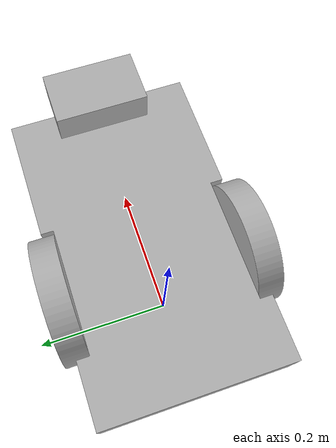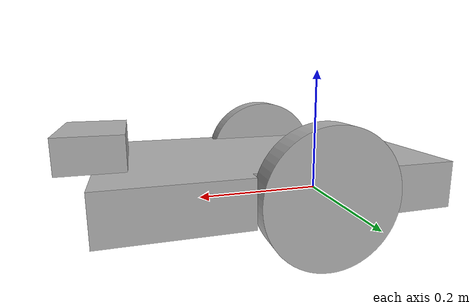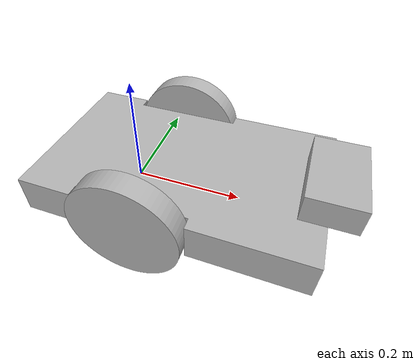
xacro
<?xml version="1.0" ?>
<robot name="twbot" xmlns:xacro="http://www.ros.org/wiki/xacro">

<xacro:include filename="$(find twbot_description)/urdf/materials.xacro" />
<xacro:include filename="$(find twbot_description)/urdf/twbot.trans" />
<xacro:include filename="$(find twbot_description)/urdf/twbot.gazebo" />
<link name="base_link">
  <inertial>
    <origin rpy="0 0 0" xyz="0.1028169014084507 0.0 0.035"/>
    <mass value="78.029"/>
    <inertia ixx="0.563741" ixy="0.0" ixz="0.0" iyy="1.722787" iyz="0.0" izz="2.222804"/>
  </inertial>
  <visual>
    <origin rpy="0 0 0" xyz="0 0 0"/>
    <geometry>
      <mesh filename="package://twbot_description/meshes/base_link.stl" scale="0.001 0.001 0.001"/>
    </geometry>
    <material name="silver"/>
  </visual>
  <collision>
    <origin rpy="0 0 0" xyz="0 0 0"/>
    <geometry>
      <mesh filename="package://twbot_description/meshes/base_link.stl" scale="0.001 0.001 0.001"/>
    </geometry>
  </collision>
</link>

<link name="left_wheel_1">
  <inertial>
    <origin rpy="0 0 0" xyz="-1.3877787807814457e-17 0.01999999999999999 -2.7755575615628914e-17"/>
    <mass value="9.86460093227195"/>
    <inertia ixx="0.025977" ixy="0.0" ixz="-0.0" iyy="0.049323" iyz="0.0" izz="0.025977"/>
  </inertial>
  <visual>
    <origin rpy="0 0 0" xyz="-0.05 -0.13 -0.035"/>
    <geometry>
      <mesh filename="package://twbot_description/meshes/left_wheel_1.stl" scale="0.001 0.001 0.001"/>
    </geometry>
    <material name="silver"/>
  </visual>
  <collision>
    <origin rpy="0 0 0" xyz="-0.05 -0.13 -0.035"/>
    <geometry>
      <mesh filename="package://twbot_description/meshes/left_wheel_1.stl" scale="0.001 0.001 0.001"/>
    </geometry>
  </collision>
</link>

<link name="right_wheel_1">
  <inertial>
    <origin rpy="0 0 0" xyz="-2.7755575615628914e-17 -0.020000000000000018 -2.7755575615628914e-17"/>
    <mass value="9.86460093227195"/>
    <inertia ixx="0.025977" ixy="-0.0" ixz="-0.0" iyy="0.049323" iyz="-0.0" izz="0.025977"/>
  </inertial>
  <visual>
    <origin rpy="0 0 0" xyz="-0.05 0.13 -0.035"/>
    <geometry>
      <mesh filename="package://twbot_description/meshes/right_wheel_1.stl" scale="0.001 0.001 0.001"/>
    </geometry>
    <material name="silver"/>
  </visual>
  <collision>
    <origin rpy="0 0 0" xyz="-0.05 0.13 -0.035"/>
    <geometry>
      <mesh filename="package://twbot_description/meshes/right_wheel_1.stl" scale="0.001 0.001 0.001"/>
    </geometry>
  </collision>
</link>

<link name="laser_link_1">
  <inertial>
    <origin rpy="0 0 0" xyz="0.04999999999999999 0.0 0.024999999999999994"/>
    <mass value="5.298749999999999"/>
    <inertia ixx="0.011039" ixy="0.0" ixz="-0.0" iyy="0.004681" iyz="-0.0" izz="0.013512"/>
  </inertial>
  <visual>
    <origin rpy="0 0 0" xyz="-0.3 0.0 -0.07"/>
    <geometry>
      <mesh filename="package://twbot_description/meshes/laser_link_1.stl" scale="0.001 0.001 0.001"/>
    </geometry>
    <material name="silver"/>
  </visual>
  <collision>
    <origin rpy="0 0 0" xyz="-0.3 0.0 -0.07"/>
    <geometry>
      <mesh filename="package://twbot_description/meshes/laser_link_1.stl" scale="0.001 0.001 0.001"/>
    </geometry>
  </collision>
</link>

<link name="caster_wheel_1">
  <inertial>
    <origin rpy="0 0 0" xyz="0.024999999999999967 0.0 -5.537041901091708e-18"/>
    <mass value="4.110250388446645"/>
    <inertia ixx="0.00411" ixy="0.0" ixz="-0.0" iyy="0.00411" iyz="-0.0" izz="0.00411"/>
  </inertial>
  <visual>
    <origin rpy="0 0 0" xyz="-0.25 -0.0 0.0"/>
    <geometry>
      <mesh filename="package://twbot_description/meshes/caster_wheel_1.stl" scale="0.001 0.001 0.001"/>
    </geometry>
    <material name="silver"/>
  </visual>
  <collision>
    <origin rpy="0 0 0" xyz="-0.25 -0.0 0.0"/>
    <geometry>
      <mesh filename="package://twbot_description/meshes/caster_wheel_1.stl" scale="0.001 0.001 0.001"/>
    </geometry>
  </collision>
</link>

<joint name="Rev1" type="continuous">
  <origin rpy="0 0 0" xyz="0.05 0.13 0.035"/>
  <parent link="base_link"/>
  <child link="left_wheel_1"/>
  <axis xyz="0.0 1.0 0.0"/>
</joint>

<joint name="Rev2" type="continuous">
  <origin rpy="0 0 0" xyz="0.05 -0.13 0.035"/>
  <parent link="base_link"/>
  <child link="right_wheel_1"/>
  <axis xyz="0.0 -1.0 0.0"/>
</joint>

<joint name="Rigid3" type="fixed">
  <origin rpy="0 0 0" xyz="0.3 0.0 0.07"/>
  <parent link="base_link"/>
  <child link="laser_link_1"/>
</joint>

<joint name="Rigid4" type="fixed">
  <origin rpy="0 0 0" xyz="0.25 0.0 0.0"/>
  <parent link="base_link"/>
  <child link="caster_wheel_1"/>
</joint>

</robot>

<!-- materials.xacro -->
<robot name="twbot" xmlns:xacro="http://www.ros.org/wiki/xacro" >

<material name="silver">
  <color rgba="0.700 0.700 0.700 1.000"/>
</material>

</robot>

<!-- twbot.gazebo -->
<robot name="twbot" xmlns:xacro="http://www.ros.org/wiki/xacro" >

<xacro:property name="body_color" value="Gazebo/Silver" />

<gazebo>
  <plugin filename="libgazebo_ros_control.so" name="control"/>
</gazebo>
<gazebo reference="base_link">
  <material>${body_color}</material>
  <mu1>0.2</mu1>
  <mu2>0.2</mu2>
  <selfCollide>true</selfCollide>
  <gravity>true</gravity>
</gazebo>

<gazebo reference="left_wheel_1">
  <material>${body_color}</material>
  <mu1>0.2</mu1>
  <mu2>0.2</mu2>
  <selfCollide>true</selfCollide>
</gazebo>

<gazebo reference="right_wheel_1">
  <material>${body_color}</material>
  <mu1>0.2</mu1>
  <mu2>0.2</mu2>
  <selfCollide>true</selfCollide>
</gazebo>

<gazebo reference="laser_link_1">
  <material>${body_color}</material>
  <mu1>0.2</mu1>
  <mu2>0.2</mu2>
  <selfCollide>true</selfCollide>
</gazebo>

<gazebo reference="caster_wheel_1">
  <material>${body_color}</material>
  <mu1>0.2</mu1>
  <mu2>0.2</mu2>
  <selfCollide>true</selfCollide>
</gazebo>

</robot>
